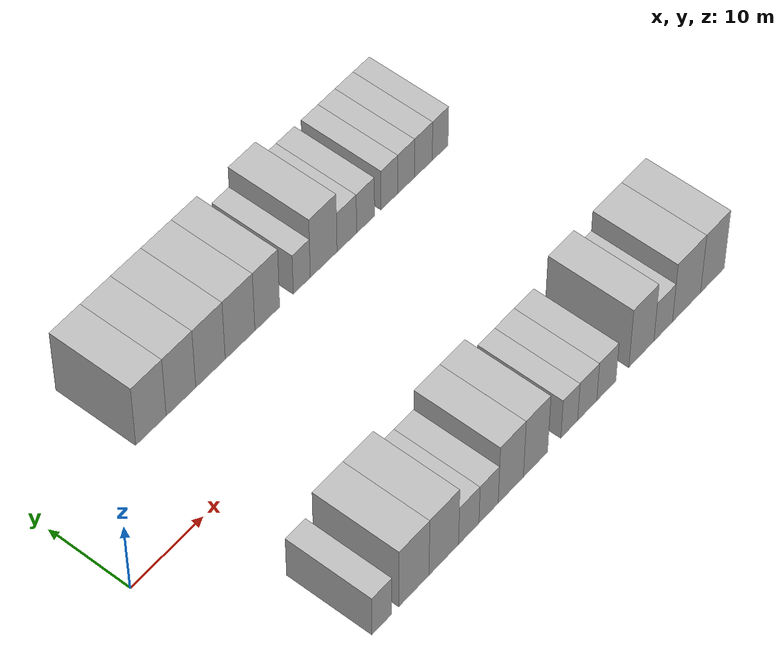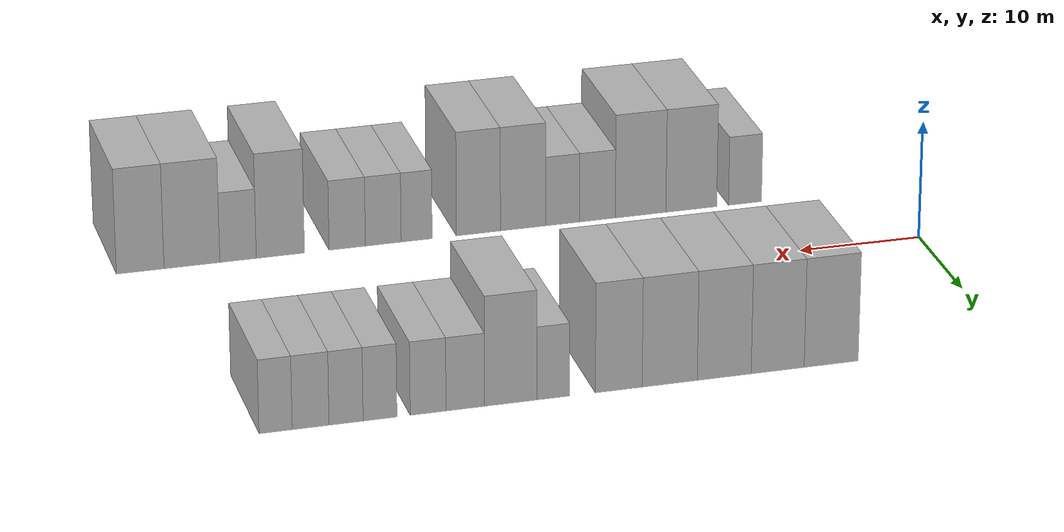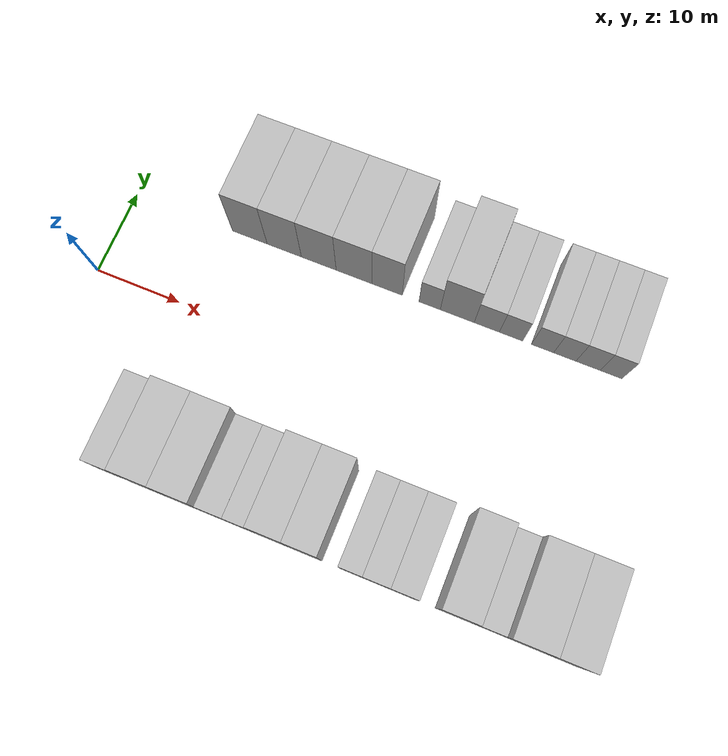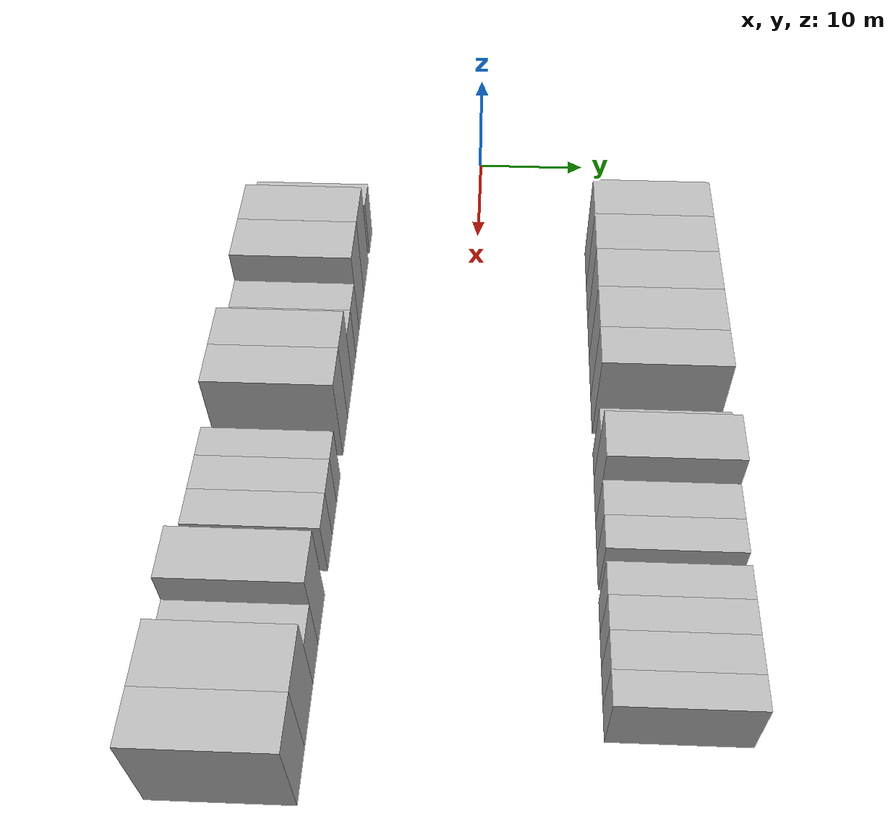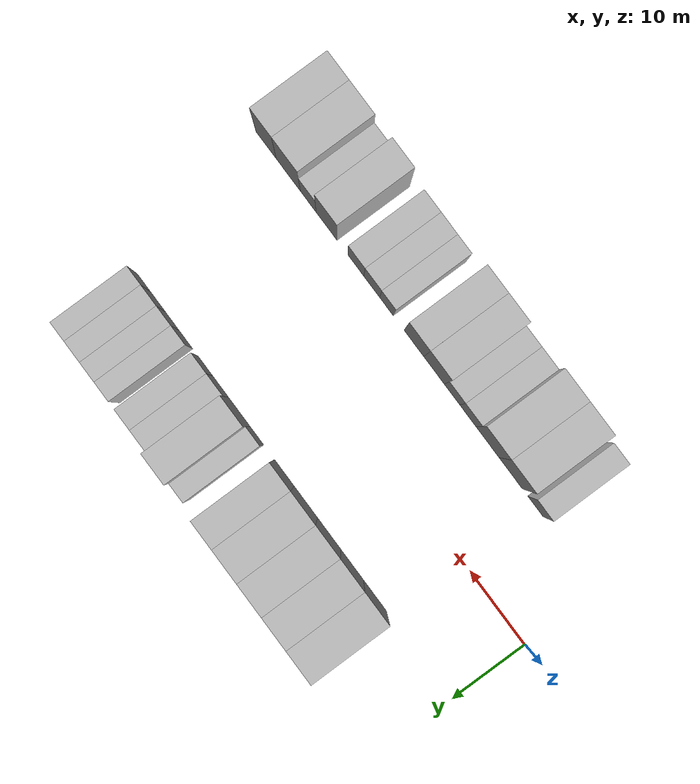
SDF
<sdf version="1.6">
 <world name="default">
  <model name="building_1">
   <static>1</static>
   <pose>14.1433 15.0000 0 0.000000 0.000000 1.570796</pose>
   <link name="link">
    <pose>0 0 4.50 0 0 0</pose>
    <collision name="collision"><geometry><box><size>10.0000 4.2866 9.0000</size></box></geometry></collision>
    <visual name="visual">
     <cast_shadows>0</cast_shadows>
     <geometry><box><size>10.0000 4.2866 9.0000</size></box></geometry>
     <material>
      <script>
       <uri>model://HANNAS_wall/materials/scripts</uri>
       <uri>model://HANNAS_wall/materials/textures</uri>
       <name>vrc/HANNAS_wall</name>
      </script>
     </material>
    </visual>
   </link>
  </model>
  <model name="building_2">
   <static>1</static>
   <pose>18.3812 15.0000 0 0.000000 0.000000 1.570796</pose>
   <link name="link">
    <pose>0 0 4.50 0 0 0</pose>
    <collision name="collision"><geometry><box><size>10.0000 4.1893 9.0000</size></box></geometry></collision>
    <visual name="visual">
     <cast_shadows>0</cast_shadows>
     <geometry><box><size>10.0000 4.1893 9.0000</size></box></geometry>
     <material>
      <script>
       <uri>model://HANNAS_wall/materials/scripts</uri>
       <uri>model://HANNAS_wall/materials/textures</uri>
       <name>vrc/HANNAS_wall</name>
      </script>
     </material>
    </visual>
   </link>
  </model>
  <model name="building_3">
   <static>1</static>
   <pose>22.5935 15.0000 0 0.000000 0.000000 1.570796</pose>
   <link name="link">
    <pose>0 0 4.50 0 0 0</pose>
    <collision name="collision"><geometry><box><size>10.0000 4.2353 9.0000</size></box></geometry></collision>
    <visual name="visual">
     <cast_shadows>0</cast_shadows>
     <geometry><box><size>10.0000 4.2353 9.0000</size></box></geometry>
     <material>
      <script>
       <uri>model://HANNAS_wall/materials/scripts</uri>
       <uri>model://HANNAS_wall/materials/textures</uri>
       <name>vrc/HANNAS_wall</name>
      </script>
     </material>
    </visual>
   </link>
  </model>
  <model name="building_4">
   <static>1</static>
   <pose>26.8650 15.0000 0 0.000000 0.000000 1.570796</pose>
   <link name="link">
    <pose>0 0 4.50 0 0 0</pose>
    <collision name="collision"><geometry><box><size>10.0000 4.3076 9.0000</size></box></geometry></collision>
    <visual name="visual">
     <cast_shadows>0</cast_shadows>
     <geometry><box><size>10.0000 4.3076 9.0000</size></box></geometry>
     <material>
      <script>
       <uri>model://HANNAS_wall/materials/scripts</uri>
       <uri>model://HANNAS_wall/materials/textures</uri>
       <name>vrc/HANNAS_wall</name>
      </script>
     </material>
    </visual>
   </link>
  </model>
  <model name="building_5">
   <static>1</static>
   <pose>30.8387 15.0000 0 0.000000 0.000000 1.570796</pose>
   <link name="link">
    <pose>0 0 4.50 0 0 0</pose>
    <collision name="collision"><geometry><box><size>10.0000 3.6397 9.0000</size></box></geometry></collision>
    <visual name="visual">
     <cast_shadows>0</cast_shadows>
     <geometry><box><size>10.0000 3.6397 9.0000</size></box></geometry>
     <material>
      <script>
       <uri>model://HANNAS_wall/materials/scripts</uri>
       <uri>model://HANNAS_wall/materials/textures</uri>
       <name>vrc/HANNAS_wall</name>
      </script>
     </material>
    </visual>
   </link>
  </model>
  <model name="building_6">
   <static>1</static>
   <pose>35.9202 15.0000 0 0.000000 0.000000 1.570796</pose>
   <link name="link">
    <pose>0 0 3.00 0 0 0</pose>
    <collision name="collision"><geometry><box><size>10.0000 2.5234 6.0000</size></box></geometry></collision>
    <visual name="visual">
     <cast_shadows>0</cast_shadows>
     <geometry><box><size>10.0000 2.5234 6.0000</size></box></geometry>
     <material>
      <script>
       <uri>model://HANNAS_wall/materials/scripts</uri>
       <uri>model://HANNAS_wall/materials/textures</uri>
       <name>vrc/HANNAS_wall</name>
      </script>
     </material>
    </visual>
   </link>
  </model>
  <model name="building_7">
   <static>1</static>
   <pose>39.1829 15.0000 0 0.000000 0.000000 1.570796</pose>
   <link name="link">
    <pose>0 0 4.50 0 0 0</pose>
    <collision name="collision"><geometry><box><size>10.0000 4.0020 9.0000</size></box></geometry></collision>
    <visual name="visual">
     <cast_shadows>0</cast_shadows>
     <geometry><box><size>10.0000 4.0020 9.0000</size></box></geometry>
     <material>
      <script>
       <uri>model://HANNAS_wall/materials/scripts</uri>
       <uri>model://HANNAS_wall/materials/textures</uri>
       <name>vrc/HANNAS_wall</name>
      </script>
     </material>
    </visual>
   </link>
  </model>
  <model name="building_8">
   <static>1</static>
   <pose>42.6572 15.0000 0 0.000000 0.000000 1.570796</pose>
   <link name="link">
    <pose>0 0 3.00 0 0 0</pose>
    <collision name="collision"><geometry><box><size>10.0000 2.9467 6.0000</size></box></geometry></collision>
    <visual name="visual">
     <cast_shadows>0</cast_shadows>
     <geometry><box><size>10.0000 2.9467 6.0000</size></box></geometry>
     <material>
      <script>
       <uri>model://HANNAS_wall/materials/scripts</uri>
       <uri>model://HANNAS_wall/materials/textures</uri>
       <name>vrc/HANNAS_wall</name>
      </script>
     </material>
    </visual>
   </link>
  </model>
  <model name="building_9">
   <static>1</static>
   <pose>45.4963 15.0000 0 0.000000 0.000000 1.570796</pose>
   <link name="link">
    <pose>0 0 3.00 0 0 0</pose>
    <collision name="collision"><geometry><box><size>10.0000 2.7314 6.0000</size></box></geometry></collision>
    <visual name="visual">
     <cast_shadows>0</cast_shadows>
     <geometry><box><size>10.0000 2.7314 6.0000</size></box></geometry>
     <material>
      <script>
       <uri>model://HANNAS_wall/materials/scripts</uri>
       <uri>model://HANNAS_wall/materials/textures</uri>
       <name>vrc/HANNAS_wall</name>
      </script>
     </material>
    </visual>
   </link>
  </model>
  <model name="building_10">
   <static>1</static>
   <pose>49.1422 15.0000 0 0.000000 0.000000 1.570796</pose>
   <link name="link">
    <pose>0 0 3.00 0 0 0</pose>
    <collision name="collision"><geometry><box><size>10.0000 2.5605 6.0000</size></box></geometry></collision>
    <visual name="visual">
     <cast_shadows>0</cast_shadows>
     <geometry><box><size>10.0000 2.5605 6.0000</size></box></geometry>
     <material>
      <script>
       <uri>model://HANNAS_wall/materials/scripts</uri>
       <uri>model://HANNAS_wall/materials/textures</uri>
       <name>vrc/HANNAS_wall</name>
      </script>
     </material>
    </visual>
   </link>
  </model>
  <model name="building_11">
   <static>1</static>
   <pose>51.7119 15.0000 0 0.000000 0.000000 1.570796</pose>
   <link name="link">
    <pose>0 0 3.00 0 0 0</pose>
    <collision name="collision"><geometry><box><size>10.0000 2.5790 6.0000</size></box></geometry></collision>
    <visual name="visual">
     <cast_shadows>0</cast_shadows>
     <geometry><box><size>10.0000 2.5790 6.0000</size></box></geometry>
     <material>
      <script>
       <uri>model://HANNAS_wall/materials/scripts</uri>
       <uri>model://HANNAS_wall/materials/textures</uri>
       <name>vrc/HANNAS_wall</name>
      </script>
     </material>
    </visual>
   </link>
  </model>
  <model name="building_12">
   <static>1</static>
   <pose>54.3860 15.0000 0 0.000000 0.000000 1.570796</pose>
   <link name="link">
    <pose>0 0 3.00 0 0 0</pose>
    <collision name="collision"><geometry><box><size>10.0000 2.7691 6.0000</size></box></geometry></collision>
    <visual name="visual">
     <cast_shadows>0</cast_shadows>
     <geometry><box><size>10.0000 2.7691 6.0000</size></box></geometry>
     <material>
      <script>
       <uri>model://HANNAS_wall/materials/scripts</uri>
       <uri>model://HANNAS_wall/materials/textures</uri>
       <name>vrc/HANNAS_wall</name>
      </script>
     </material>
    </visual>
   </link>
  </model>
  <model name="building_13">
   <static>1</static>
   <pose>57.0139 15.0000 0 0.000000 0.000000 1.570796</pose>
   <link name="link">
    <pose>0 0 3.00 0 0 0</pose>
    <collision name="collision"><geometry><box><size>10.0000 2.4868 6.0000</size></box></geometry></collision>
    <visual name="visual">
     <cast_shadows>0</cast_shadows>
     <geometry><box><size>10.0000 2.4868 6.0000</size></box></geometry>
     <material>
      <script>
       <uri>model://HANNAS_wall/materials/scripts</uri>
       <uri>model://HANNAS_wall/materials/textures</uri>
       <name>vrc/HANNAS_wall</name>
      </script>
     </material>
    </visual>
   </link>
  </model>
  <model name="building_55">
   <static>1</static>
   <pose>11.4036 -15.0000 0 0.000000 0.000000 1.570796</pose>
   <link name="link">
    <pose>0 0 3.00 0 0 0</pose>
    <collision name="collision"><geometry><box><size>10.0000 2.8072 6.0000</size></box></geometry></collision>
    <visual name="visual">
     <cast_shadows>0</cast_shadows>
     <geometry><box><size>10.0000 2.8072 6.0000</size></box></geometry>
     <material>
      <script>
       <uri>model://HANNAS_wall/materials/scripts</uri>
       <uri>model://HANNAS_wall/materials/textures</uri>
       <name>vrc/HANNAS_wall</name>
      </script>
     </material>
    </visual>
   </link>
  </model>
  <model name="building_56">
   <static>1</static>
   <pose>15.9590 -15.0000 0 0.000000 0.000000 1.570796</pose>
   <link name="link">
    <pose>0 0 4.50 0 0 0</pose>
    <collision name="collision"><geometry><box><size>10.0000 4.3037 9.0000</size></box></geometry></collision>
    <visual name="visual">
     <cast_shadows>0</cast_shadows>
     <geometry><box><size>10.0000 4.3037 9.0000</size></box></geometry>
     <material>
      <script>
       <uri>model://HANNAS_wall/materials/scripts</uri>
       <uri>model://HANNAS_wall/materials/textures</uri>
       <name>vrc/HANNAS_wall</name>
      </script>
     </material>
    </visual>
   </link>
  </model>
  <model name="building_57">
   <static>1</static>
   <pose>20.2456 -15.0000 0 0.000000 0.000000 1.570796</pose>
   <link name="link">
    <pose>0 0 4.50 0 0 0</pose>
    <collision name="collision"><geometry><box><size>10.0000 4.2694 9.0000</size></box></geometry></collision>
    <visual name="visual">
     <cast_shadows>0</cast_shadows>
     <geometry><box><size>10.0000 4.2694 9.0000</size></box></geometry>
     <material>
      <script>
       <uri>model://HANNAS_wall/materials/scripts</uri>
       <uri>model://HANNAS_wall/materials/textures</uri>
       <name>vrc/HANNAS_wall</name>
      </script>
     </material>
    </visual>
   </link>
  </model>
  <model name="building_58">
   <static>1</static>
   <pose>23.8735 -15.0000 0 0.000000 0.000000 1.570796</pose>
   <link name="link">
    <pose>0 0 3.00 0 0 0</pose>
    <collision name="collision"><geometry><box><size>10.0000 2.9865 6.0000</size></box></geometry></collision>
    <visual name="visual">
     <cast_shadows>0</cast_shadows>
     <geometry><box><size>10.0000 2.9865 6.0000</size></box></geometry>
     <material>
      <script>
       <uri>model://HANNAS_wall/materials/scripts</uri>
       <uri>model://HANNAS_wall/materials/textures</uri>
       <name>vrc/HANNAS_wall</name>
      </script>
     </material>
    </visual>
   </link>
  </model>
  <model name="building_59">
   <static>1</static>
   <pose>26.7877 -15.0000 0 0.000000 0.000000 1.570796</pose>
   <link name="link">
    <pose>0 0 3.00 0 0 0</pose>
    <collision name="collision"><geometry><box><size>10.0000 2.8418 6.0000</size></box></geometry></collision>
    <visual name="visual">
     <cast_shadows>0</cast_shadows>
     <geometry><box><size>10.0000 2.8418 6.0000</size></box></geometry>
     <material>
      <script>
       <uri>model://HANNAS_wall/materials/scripts</uri>
       <uri>model://HANNAS_wall/materials/textures</uri>
       <name>vrc/HANNAS_wall</name>
      </script>
     </material>
    </visual>
   </link>
  </model>
  <model name="building_60">
   <static>1</static>
   <pose>30.0855 -15.0000 0 0.000000 0.000000 1.570796</pose>
   <link name="link">
    <pose>0 0 4.50 0 0 0</pose>
    <collision name="collision"><geometry><box><size>10.0000 3.7539 9.0000</size></box></geometry></collision>
    <visual name="visual">
     <cast_shadows>0</cast_shadows>
     <geometry><box><size>10.0000 3.7539 9.0000</size></box></geometry>
     <material>
      <script>
       <uri>model://HANNAS_wall/materials/scripts</uri>
       <uri>model://HANNAS_wall/materials/textures</uri>
       <name>vrc/HANNAS_wall</name>
      </script>
     </material>
    </visual>
   </link>
  </model>
  <model name="building_61">
   <static>1</static>
   <pose>33.7828 -15.0000 0 0.000000 0.000000 1.570796</pose>
   <link name="link">
    <pose>0 0 4.50 0 0 0</pose>
    <collision name="collision"><geometry><box><size>10.0000 3.6406 9.0000</size></box></geometry></collision>
    <visual name="visual">
     <cast_shadows>0</cast_shadows>
     <geometry><box><size>10.0000 3.6406 9.0000</size></box></geometry>
     <material>
      <script>
       <uri>model://HANNAS_wall/materials/scripts</uri>
       <uri>model://HANNAS_wall/materials/textures</uri>
       <name>vrc/HANNAS_wall</name>
      </script>
     </material>
    </visual>
   </link>
  </model>
  <model name="building_62">
   <static>1</static>
   <pose>38.8738 -15.0000 0 0.000000 0.000000 1.570796</pose>
   <link name="link">
    <pose>0 0 3.00 0 0 0</pose>
    <collision name="collision"><geometry><box><size>10.0000 2.5413 6.0000</size></box></geometry></collision>
    <visual name="visual">
     <cast_shadows>0</cast_shadows>
     <geometry><box><size>10.0000 2.5413 6.0000</size></box></geometry>
     <material>
      <script>
       <uri>model://HANNAS_wall/materials/scripts</uri>
       <uri>model://HANNAS_wall/materials/textures</uri>
       <name>vrc/HANNAS_wall</name>
      </script>
     </material>
    </visual>
   </link>
  </model>
  <model name="building_63">
   <static>1</static>
   <pose>41.6143 -15.0000 0 0.000000 0.000000 1.570796</pose>
   <link name="link">
    <pose>0 0 3.00 0 0 0</pose>
    <collision name="collision"><geometry><box><size>10.0000 2.9398 6.0000</size></box></geometry></collision>
    <visual name="visual">
     <cast_shadows>0</cast_shadows>
     <geometry><box><size>10.0000 2.9398 6.0000</size></box></geometry>
     <material>
      <script>
       <uri>model://HANNAS_wall/materials/scripts</uri>
       <uri>model://HANNAS_wall/materials/textures</uri>
       <name>vrc/HANNAS_wall</name>
      </script>
     </material>
    </visual>
   </link>
  </model>
  <model name="building_64">
   <static>1</static>
   <pose>44.5669 -15.0000 0 0.000000 0.000000 1.570796</pose>
   <link name="link">
    <pose>0 0 3.00 0 0 0</pose>
    <collision name="collision"><geometry><box><size>10.0000 2.9653 6.0000</size></box></geometry></collision>
    <visual name="visual">
     <cast_shadows>0</cast_shadows>
     <geometry><box><size>10.0000 2.9653 6.0000</size></box></geometry>
     <material>
      <script>
       <uri>model://HANNAS_wall/materials/scripts</uri>
       <uri>model://HANNAS_wall/materials/textures</uri>
       <name>vrc/HANNAS_wall</name>
      </script>
     </material>
    </visual>
   </link>
  </model>
  <model name="building_65">
   <static>1</static>
   <pose>50.0060 -15.0000 0 0.000000 0.000000 1.570796</pose>
   <link name="link">
    <pose>0 0 4.50 0 0 0</pose>
    <collision name="collision"><geometry><box><size>10.0000 3.9129 9.0000</size></box></geometry></collision>
    <visual name="visual">
     <cast_shadows>0</cast_shadows>
     <geometry><box><size>10.0000 3.9129 9.0000</size></box></geometry>
     <material>
      <script>
       <uri>model://HANNAS_wall/materials/scripts</uri>
       <uri>model://HANNAS_wall/materials/textures</uri>
       <name>vrc/HANNAS_wall</name>
      </script>
     </material>
    </visual>
   </link>
  </model>
  <model name="building_66">
   <static>1</static>
   <pose>53.4331 -15.0000 0 0.000000 0.000000 1.570796</pose>
   <link name="link">
    <pose>0 0 3.00 0 0 0</pose>
    <collision name="collision"><geometry><box><size>10.0000 2.9412 6.0000</size></box></geometry></collision>
    <visual name="visual">
     <cast_shadows>0</cast_shadows>
     <geometry><box><size>10.0000 2.9412 6.0000</size></box></geometry>
     <material>
      <script>
       <uri>model://HANNAS_wall/materials/scripts</uri>
       <uri>model://HANNAS_wall/materials/textures</uri>
       <name>vrc/HANNAS_wall</name>
      </script>
     </material>
    </visual>
   </link>
  </model>
  <model name="building_67">
   <static>1</static>
   <pose>57.1453 -15.0000 0 0.000000 0.000000 1.570796</pose>
   <link name="link">
    <pose>0 0 4.50 0 0 0</pose>
    <collision name="collision"><geometry><box><size>10.0000 4.4832 9.0000</size></box></geometry></collision>
    <visual name="visual">
     <cast_shadows>0</cast_shadows>
     <geometry><box><size>10.0000 4.4832 9.0000</size></box></geometry>
     <material>
      <script>
       <uri>model://HANNAS_wall/materials/scripts</uri>
       <uri>model://HANNAS_wall/materials/textures</uri>
       <name>vrc/HANNAS_wall</name>
      </script>
     </material>
    </visual>
   </link>
  </model>
  <model name="building_68">
   <static>1</static>
   <pose>61.2916 -15.0000 0 0.000000 0.000000 1.570796</pose>
   <link name="link">
    <pose>0 0 4.50 0 0 0</pose>
    <collision name="collision"><geometry><box><size>10.0000 3.8095 9.0000</size></box></geometry></collision>
    <visual name="visual">
     <cast_shadows>0</cast_shadows>
     <geometry><box><size>10.0000 3.8095 9.0000</size></box></geometry>
     <material>
      <script>
       <uri>model://HANNAS_wall/materials/scripts</uri>
       <uri>model://HANNAS_wall/materials/textures</uri>
       <name>vrc/HANNAS_wall</name>
      </script>
     </material>
    </visual>
   </link>
  </model>
 </world>
</sdf>
